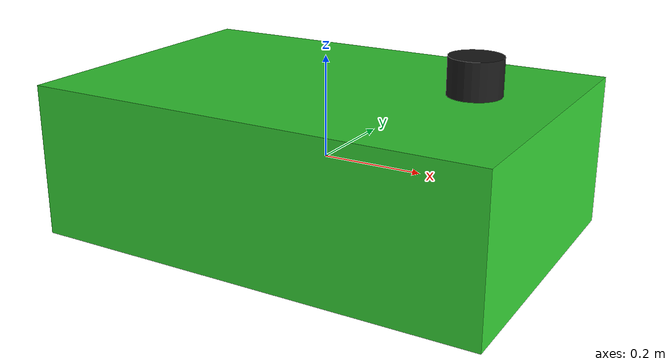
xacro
<?xml version="1.0"?>
<!--
  URDF/Xacro Template for Autonomous Lawn Mower
  This is a template to be populated by the Simulator agent based on actual hardware specs
-->
<robot xmlns:xacro="http://www.ros.org/wiki/xacro" name="ai_mower">

  <!-- Properties - TO BE FILLED FROM hardware_inventory.yaml -->
  <xacro:property name="base_length" value="0.9"/>  <!-- meters -->
  <xacro:property name="base_width" value="0.6"/>
  <xacro:property name="base_height" value="0.3"/>
  <xacro:property name="wheel_radius" value="0.1"/>
  <xacro:property name="wheel_width" value="0.05"/>
  <xacro:property name="wheelbase" value="0.5"/>
  <xacro:property name="base_mass" value="25.0"/>  <!-- kg -->

  <!-- Base Link -->
  <link name="base_link">
    <visual>
      <geometry>
        <box size="${base_length} ${base_width} ${base_height}"/>
      </geometry>
      <material name="green">
        <color rgba="0.2 0.8 0.2 1.0"/>
      </material>
    </visual>
    <collision>
      <geometry>
        <box size="${base_length} ${base_width} ${base_height}"/>
      </geometry>
    </collision>
    <inertial>
      <mass value="${base_mass}"/>
      <inertia ixx="0.5" ixy="0.0" ixz="0.0" iyy="1.0" iyz="0.0" izz="1.2"/>
    </inertial>
  </link>

  <!-- Wheel Macros -->
  <xacro:macro name="wheel" params="prefix reflect">
    <link name="${prefix}_wheel">
      <visual>
        <geometry>
          <cylinder radius="${wheel_radius}" length="${wheel_width}"/>
        </geometry>
        <material name="black">
          <color rgba="0.1 0.1 0.1 1.0"/>
        </material>
      </visual>
      <collision>
        <geometry>
          <cylinder radius="${wheel_radius}" length="${wheel_width}"/>
        </geometry>
      </collision>
      <inertial>
        <mass value="2.0"/>
        <inertia ixx="0.01" ixy="0.0" ixz="0.0" iyy="0.01" iyz="0.0" izz="0.01"/>
      </inertial>
    </link>

    <joint name="${prefix}_wheel_joint" type="continuous">
      <parent link="base_link"/>
      <child link="${prefix}_wheel"/>
      <origin xyz="0 ${reflect * wheelbase/2} 0" rpy="-1.5708 0 0"/>
      <axis xyz="0 0 1"/>
    </joint>

    <!-- Transmission for ros2_control -->
    <transmission name="${prefix}_wheel_transmission">
      <type>transmission_interface/SimpleTransmission</type>
      <joint name="${prefix}_wheel_joint">
        <hardwareInterface>hardware_interface/VelocityJointInterface</hardwareInterface>
      </joint>
      <actuator name="${prefix}_wheel_motor">
        <hardwareInterface>hardware_interface/VelocityJointInterface</hardwareInterface>
        <mechanicalReduction>1</mechanicalReduction>
      </actuator>
    </transmission>
  </xacro:macro>

  <!-- Instantiate wheels -->
  <xacro:wheel prefix="left" reflect="1"/>
  <xacro:wheel prefix="right" reflect="-1"/>

  <!-- Sensor mounts - TO BE POPULATED -->
  <!-- Example: Lidar mount -->
  <link name="lidar_link">
    <visual>
      <geometry>
        <cylinder radius="0.05" length="0.07"/>
      </geometry>
      <material name="black">
        <color rgba="0.1 0.1 0.1 1.0"/>
      </material>
    </visual>
  </link>

  <joint name="lidar_joint" type="fixed">
    <parent link="base_link"/>
    <child link="lidar_link"/>
    <origin xyz="0.3 0 0.2" rpy="0 0 0"/>
  </joint>

  <!-- Gazebo plugins will be added by Controller & Plugin Integrator agent -->

</robot>
